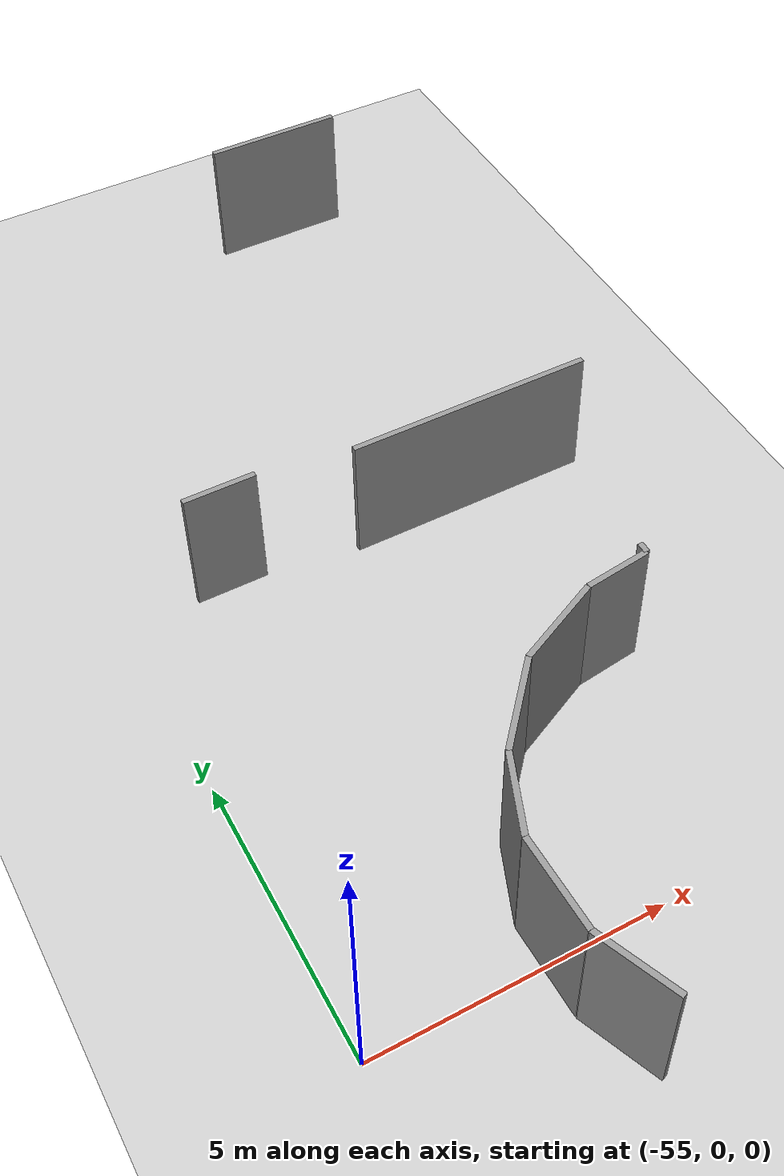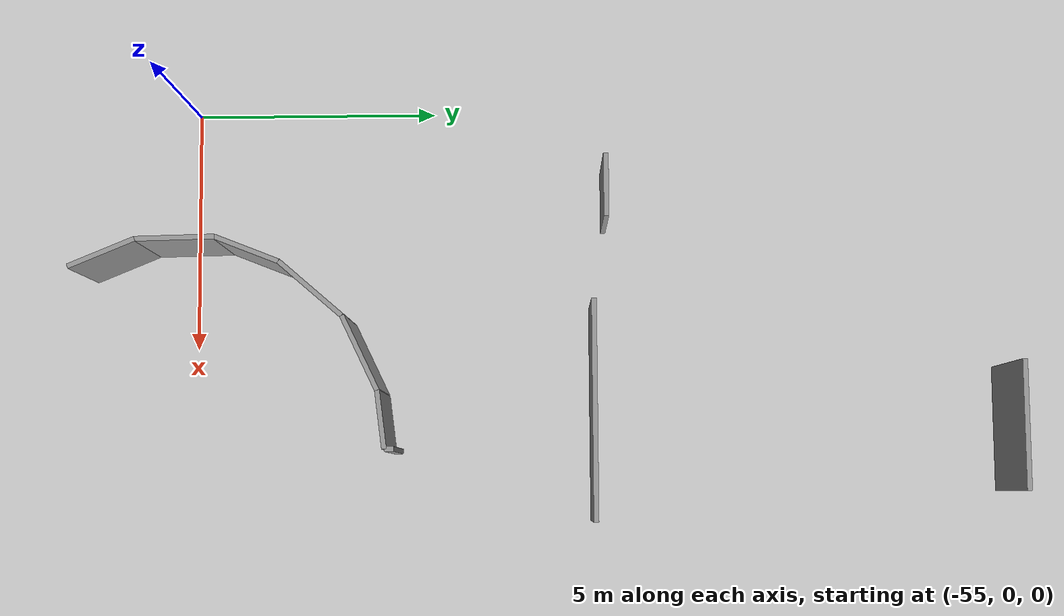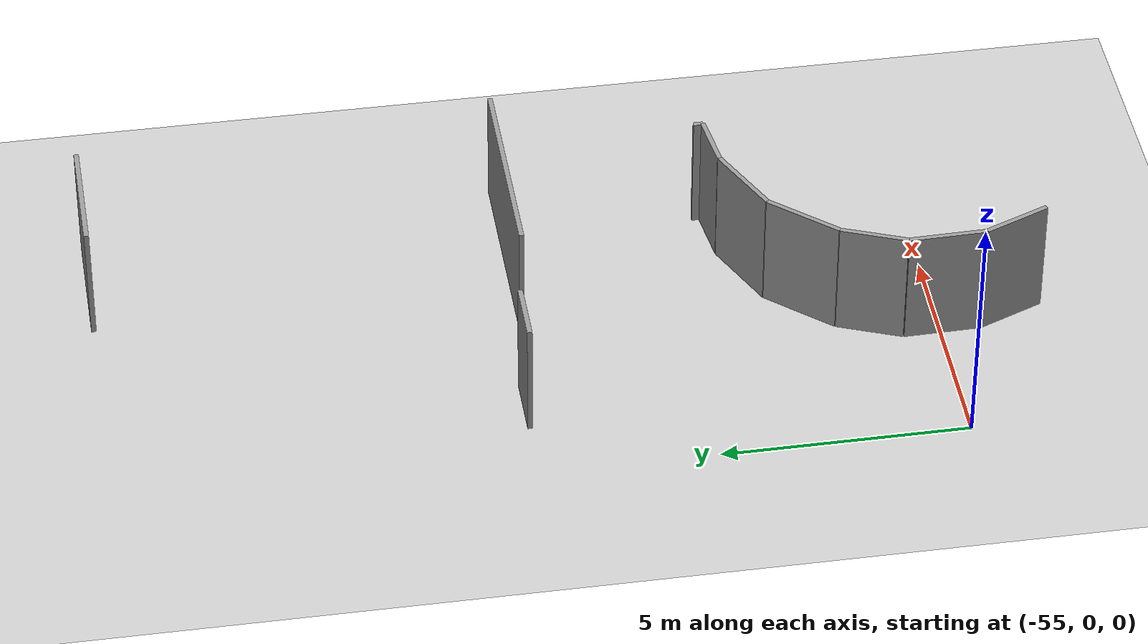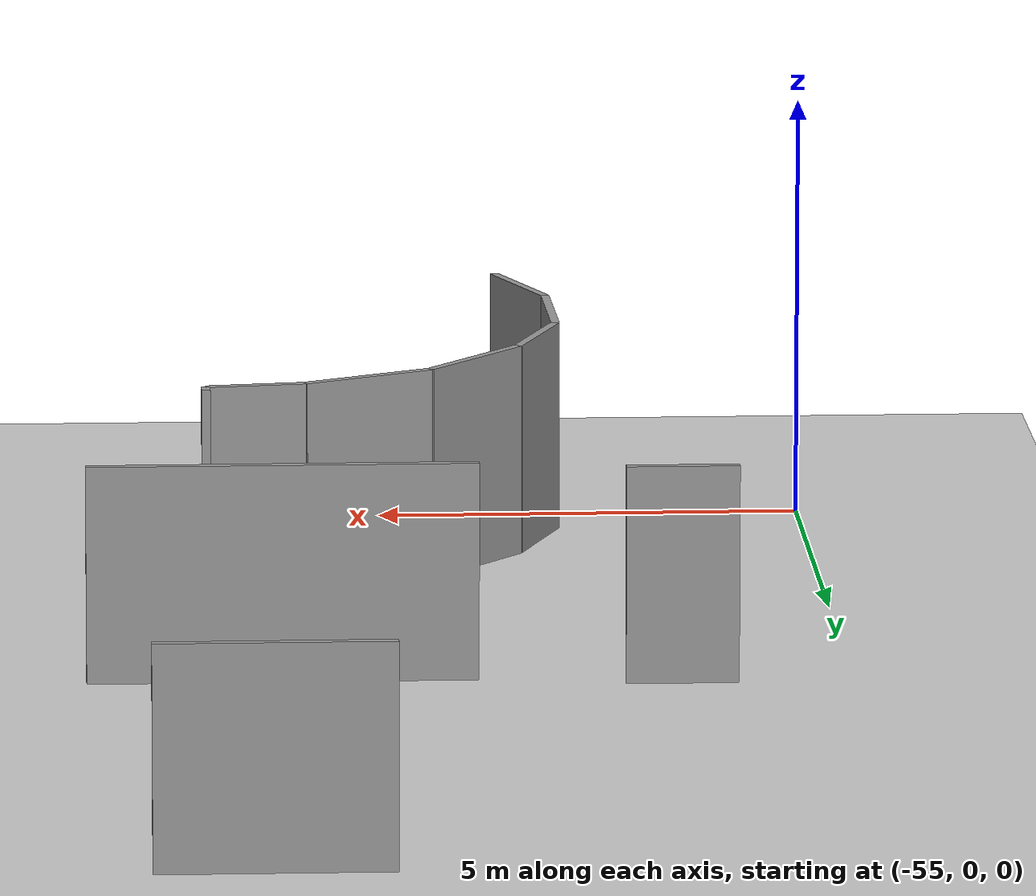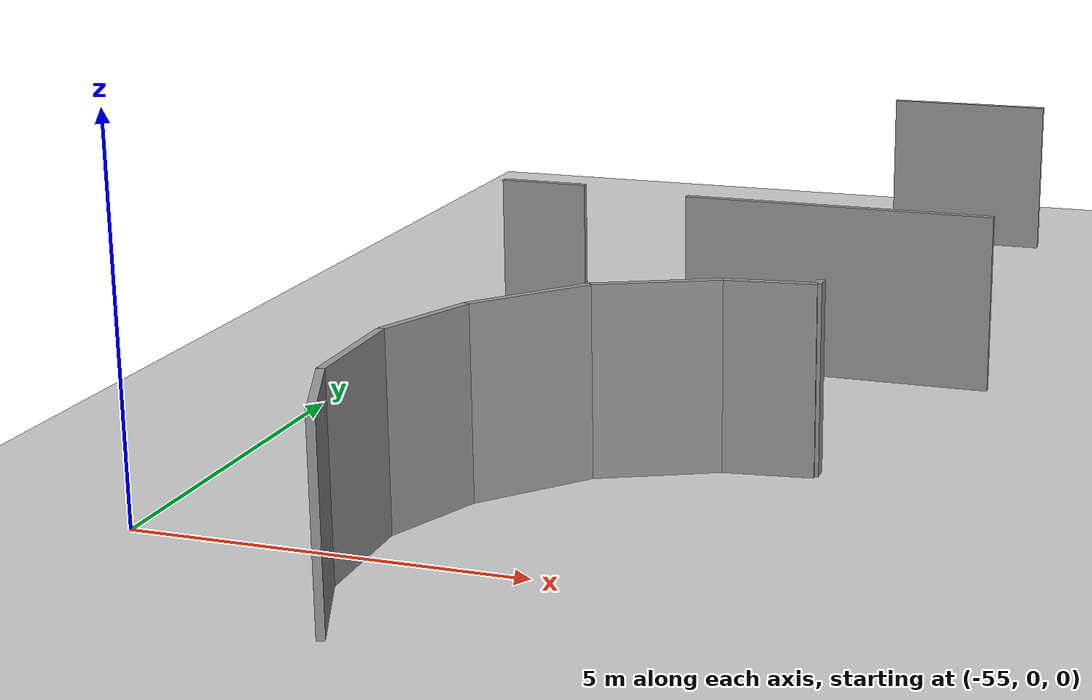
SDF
<sdf version="1.6">
 <world name="default">
  <model name="ground_plane">
   <static>1</static>
   <link name="link">
    <collision name="collision">
     <geometry><plane><normal>0 0 1</normal><size>100 100</size></plane></geometry>
     <surface><friction><ode><mu>100</mu><mu2>50</mu2></ode></friction></surface>
    </collision>
    <visual name="visual">
     <cast_shadows>0</cast_shadows>
     <geometry><plane><normal>0 0 1</normal><size>100 100</size></plane></geometry>
     <material>
      <script><uri>file://media/materials/scripts/gazebo.material</uri><name>Gazebo/Grey</name></script>
     </material>
    </visual>
   </link>
  </model>
  <model name="50041184">
   <static>1</static>
   <link name="Wall_10">
    <collision name="Wall_10_Collision">
     <geometry><box><size>4.42361036175 0.1 2.5</size></box></geometry>
     <pose>2.21180518087 0 1.25 0 0 0</pose>
    </collision>
    <visual name="Wall_10_Visual">
     <pose>2.21180518087 0 1.25 0 0 0</pose>
     <geometry><box><size>4.42361036175 0.1 2.5</size></box></geometry>
     <material>
      <script><uri>file://media/materials/scripts/gazebo.material</uri><name>Gazebo/Grey</name></script>
      <ambient>1 1 1 1</ambient>
     </material>
    </visual>
    <pose>20.8286223904 -8.50813439041 0 0 0 0.0</pose>
   </link>
   <link name="Wall_16">
    <collision name="Wall_16_Collision">
     <geometry><box><size>1.27674700554 0.1 2.5</size></box></geometry>
     <pose>0.638373502771 0 1.25 0 0 0</pose>
    </collision>
    <visual name="Wall_16_Visual">
     <pose>0.638373502771 0 1.25 0 0 0</pose>
     <geometry><box><size>1.27674700554 0.1 2.5</size></box></geometry>
     <material>
      <script><uri>file://media/materials/scripts/gazebo.material</uri><name>Gazebo/Grey</name></script>
      <ambient>1 1 1 1</ambient>
     </material>
    </visual>
    <pose>19.1872718848 -8.23836334668 0 0 0 3.14159265359</pose>
   </link>
   <link name="Wall_19">
    <collision name="Wall_19_Collision">
     <geometry><box><size>2.60046591046 0.1 2.5</size></box></geometry>
     <pose>1.30023295523 0 1.25 0 0 0</pose>
    </collision>
    <visual name="Wall_19_Visual">
     <pose>1.30023295523 0 1.25 0 0 0</pose>
     <geometry><box><size>2.60046591046 0.1 2.5</size></box></geometry>
     <material>
      <script><uri>file://media/materials/scripts/gazebo.material</uri><name>Gazebo/Grey</name></script>
      <ambient>1 1 1 1</ambient>
     </material>
    </visual>
    <pose>22.1093048794 -0.0 0 0 0 0.0</pose>
   </link>
   <link name="Wall_282">
    <collision name="Wall_282_Collision">
     <geometry><box><size>1.43377849911 0.1 2.5</size></box></geometry>
     <pose>0.716889249553 0 1.25 0 0 0</pose>
    </collision>
    <visual name="Wall_282_Visual">
     <pose>0.716889249553 0 1.25 0 0 0</pose>
     <geometry><box><size>1.43377849911 0.1 2.5</size></box></geometry>
     <material>
      <script><uri>file://media/materials/scripts/gazebo.material</uri><name>Gazebo/Grey</name></script>
      <ambient>1 1 1 1</ambient>
     </material>
    </visual>
    <pose>20.1121104982 -18.9728388166 0 0 0 1.95889899306</pose>
   </link>
   <link name="Wall_283">
    <collision name="Wall_283_Collision">
     <geometry><box><size>1.58635123601 0.1 2.5</size></box></geometry>
     <pose>0.793175618005 0 1.25 0 0 0</pose>
    </collision>
    <visual name="Wall_283_Visual">
     <pose>0.793175618005 0 1.25 0 0 0</pose>
     <geometry><box><size>1.58635123601 0.1 2.5</size></box></geometry>
     <material>
      <script><uri>file://media/materials/scripts/gazebo.material</uri><name>Gazebo/Grey</name></script>
      <ambient>1 1 1 1</ambient>
     </material>
    </visual>
    <pose>19.5695215849 -17.6456922325 0 0 0 1.59184500673</pose>
   </link>
   <link name="Wall_284">
    <collision name="Wall_284_Collision">
     <geometry><box><size>1.38268316315 0.1 2.5</size></box></geometry>
     <pose>0.691341581573 0 1.25 0 0 0</pose>
    </collision>
    <visual name="Wall_284_Visual">
     <pose>0.691341581573 0 1.25 0 0 0</pose>
     <geometry><box><size>1.38268316315 0.1 2.5</size></box></geometry>
     <material>
      <script><uri>file://media/materials/scripts/gazebo.material</uri><name>Gazebo/Grey</name></script>
      <ambient>1 1 1 1</ambient>
     </material>
    </visual>
    <pose>19.536133451 -16.0596923975 0 0 0 1.1936487313</pose>
   </link>
   <link name="Wall_285">
    <collision name="Wall_285_Collision">
     <geometry><box><size>1.66865196106 0.1 2.5</size></box></geometry>
     <pose>0.834325980532 0 1.25 0 0 0</pose>
    </collision>
    <visual name="Wall_285_Visual">
     <pose>0.834325980532 0 1.25 0 0 0</pose>
     <geometry><box><size>1.66865196106 0.1 2.5</size></box></geometry>
     <material>
      <script><uri>file://media/materials/scripts/gazebo.material</uri><name>Gazebo/Grey</name></script>
      <ambient>1 1 1 1</ambient>
     </material>
    </visual>
    <pose>20.0453342305 -14.7741857675 0 0 0 0.856146031151</pose>
   </link>
   <link name="Wall_286">
    <collision name="Wall_286_Collision">
     <geometry><box><size>1.64289993442 0.1 2.5</size></box></geometry>
     <pose>0.821449967211 0 1.25 0 0 0</pose>
    </collision>
    <visual name="Wall_286_Visual">
     <pose>0.821449967211 0 1.25 0 0 0</pose>
     <geometry><box><size>1.64289993442 0.1 2.5</size></box></geometry>
     <material>
      <script><uri>file://media/materials/scripts/gazebo.material</uri><name>Gazebo/Grey</name></script>
      <ambient>1 1 1 1</ambient>
     </material>
    </visual>
    <pose>21.1388908284 -13.5138154512 0 0 0 0.441010619201</pose>
   </link>
   <link name="Wall_287">
    <collision name="Wall_287_Collision">
     <geometry><box><size>1.16896571147 0.1 2.5</size></box></geometry>
     <pose>0.584482855734 0 1.25 0 0 0</pose>
    </collision>
    <visual name="Wall_287_Visual">
     <pose>0.584482855734 0 1.25 0 0 0</pose>
     <geometry><box><size>1.16896571147 0.1 2.5</size></box></geometry>
     <material>
      <script><uri>file://media/materials/scripts/gazebo.material</uri><name>Gazebo/Grey</name></script>
      <ambient>1 1 1 1</ambient>
     </material>
    </visual>
    <pose>22.6245993107 -12.8125376886 0 0 0 0.121607045593</pose>
   </link>
   <link name="Wall_288">
    <collision name="Wall_288_Collision">
     <geometry><box><size>0.19309259177 0.1 2.5</size></box></geometry>
     <pose>0.0965462958849 0 1.25 0 0 0</pose>
    </collision>
    <visual name="Wall_288_Visual">
     <pose>0.0965462958849 0 1.25 0 0 0</pose>
     <geometry><box><size>0.19309259177 0.1 2.5</size></box></geometry>
     <material>
      <script><uri>file://media/materials/scripts/gazebo.material</uri><name>Gazebo/Grey</name></script>
      <ambient>1 1 1 1</ambient>
     </material>
    </visual>
    <pose>23.7849321764 -12.6707333329 0 0 0 1.57079632679</pose>
   </link>
   <pose>-71.6 16.80775925 0 0 0 0</pose>
  </model>
 </world>
</sdf>
